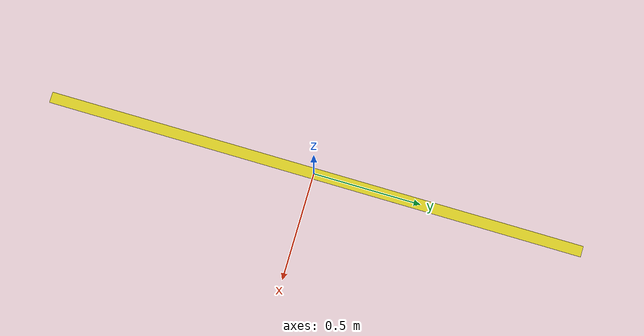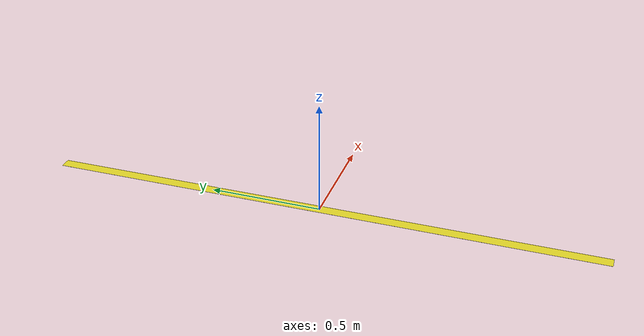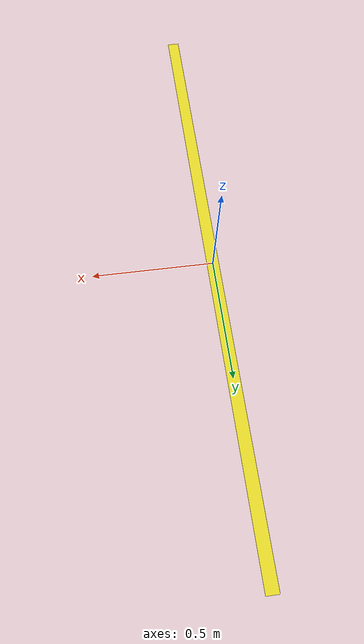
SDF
<?xml version="1.0"?>
<!-- Credit to https://github.com/sudrag/line_follower_turtlebot/tree/master/Maps/yellow%20line -->
<sdf version="1.6">
<model name="yellow line">
  <static>true</static>
    <link name="link_ground">
      <collision name="collision">
        <geometry>
          <plane>
            <normal>0 0 1</normal>
            <size>0.05 2.5</size>
          </plane>
        </geometry>

        <surface>
          <friction>
            <ode>
              <mu>100</mu>
              <mu2>50</mu2>
            </ode>
          </friction>
        </surface>
      </collision>
      <visual name="visual_ground">
        <cast_shadows>false</cast_shadows>
        <geometry>
          <plane>
            <normal>0 0 1</normal>
            <size>0.05 2.5</size>
          </plane>
        </geometry>
       <material>
          <script>
            <uri>file://media/materials/scripts/gazebo.material</uri>
            <name>Gazebo/Yellow</name>
          </script>
        </material>
      </visual>
    </link>
  </model>
</sdf>
